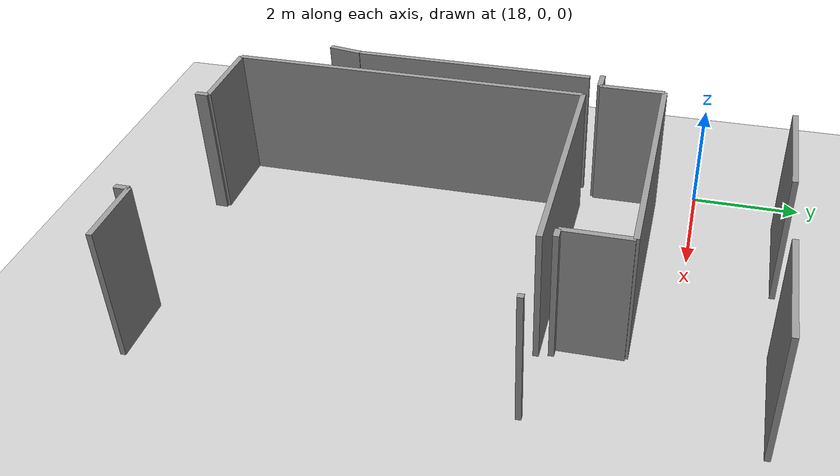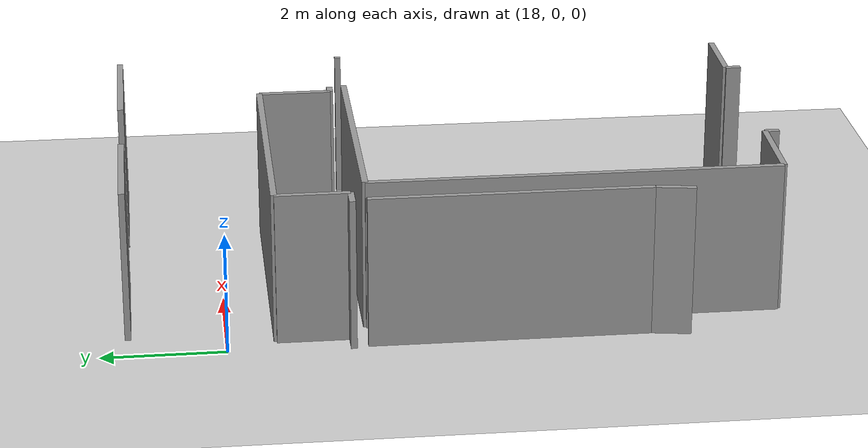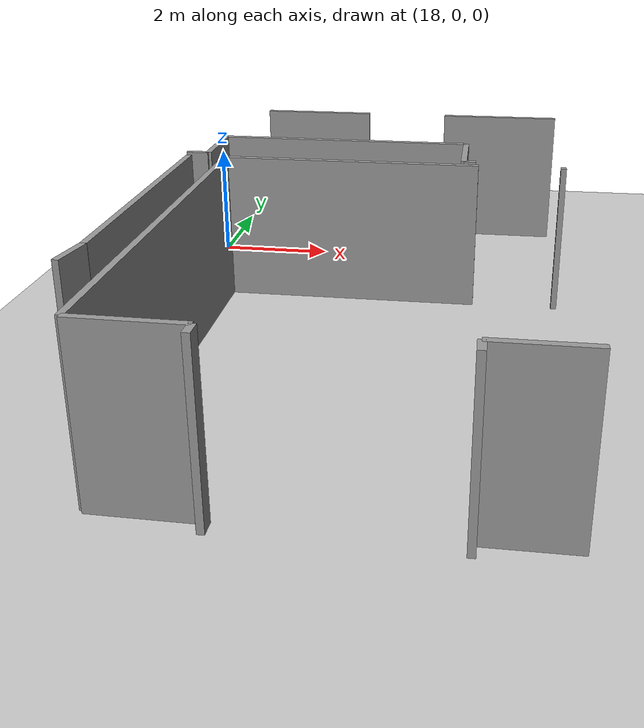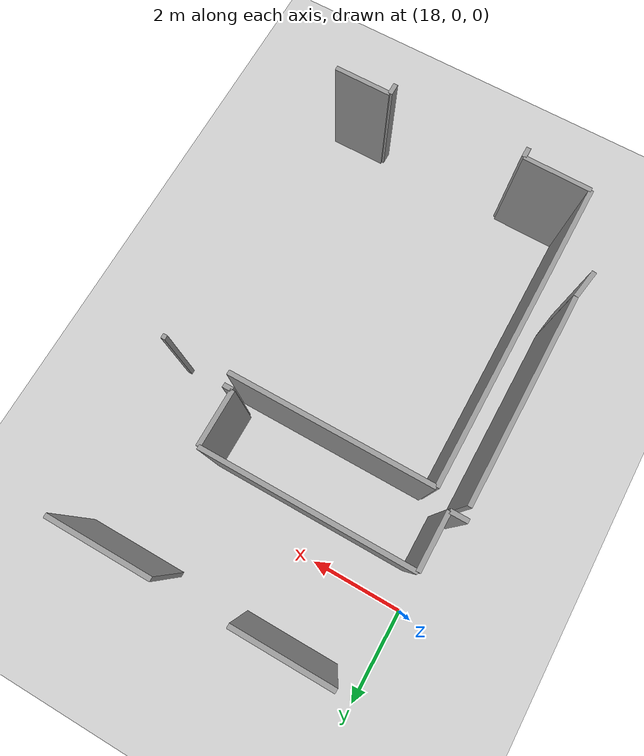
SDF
<sdf version="1.6">
 <world name="default">
  <model name="ground_plane">
   <static>1</static>
   <link name="link">
    <collision name="collision">
     <geometry><plane><normal>0 0 1</normal><size>100 100</size></plane></geometry>
     <surface><friction><ode><mu>100</mu><mu2>50</mu2></ode></friction></surface>
    </collision>
    <visual name="visual">
     <cast_shadows>0</cast_shadows>
     <geometry><plane><normal>0 0 1</normal><size>100 100</size></plane></geometry>
     <material>
      <script><uri>file://media/materials/scripts/gazebo.material</uri><name>Gazebo/Grey</name></script>
     </material>
    </visual>
   </link>
  </model>
  <model name="0510034841_A-40">
   <static>1</static>
   <link name="Wall_233">
    <collision name="Wall_233_Collision">
     <geometry><box><size>4.4979435361 0.1 2.5</size></box></geometry>
     <pose>2.24897176805 0 1.25 0 0 0</pose>
    </collision>
    <visual name="Wall_233_Visual">
     <pose>2.24897176805 0 1.25 0 0 0</pose>
     <geometry><box><size>4.4979435361 0.1 2.5</size></box></geometry>
     <material>
      <script><uri>file://media/materials/scripts/gazebo.material</uri><name>Gazebo/Grey</name></script>
      <ambient>1 1 1 1</ambient>
     </material>
    </visual>
    <pose>51.8256829491 -11.5381588301 0 0 0 -1.57079632679</pose>
   </link>
   <link name="Wall_234">
    <collision name="Wall_234_Collision">
     <geometry><box><size>0.634008408141 0.1 2.5</size></box></geometry>
     <pose>0.317004204071 0 1.25 0 0 0</pose>
    </collision>
    <visual name="Wall_234_Visual">
     <pose>0.317004204071 0 1.25 0 0 0</pose>
     <geometry><box><size>0.634008408141 0.1 2.5</size></box></geometry>
     <material>
      <script><uri>file://media/materials/scripts/gazebo.material</uri><name>Gazebo/Grey</name></script>
      <ambient>1 1 1 1</ambient>
     </material>
    </visual>
    <pose>51.8256829491 -16.0361023662 0 0 0 -1.73288378928</pose>
   </link>
   <link name="Wall_251">
    <collision name="Wall_251_Collision">
     <geometry><box><size>2.09924342439 0.1 2.5</size></box></geometry>
     <pose>1.0496217122 0 1.25 0 0 0</pose>
    </collision>
    <visual name="Wall_251_Visual">
     <pose>1.0496217122 0 1.25 0 0 0</pose>
     <geometry><box><size>2.09924342439 0.1 2.5</size></box></geometry>
     <material>
      <script><uri>file://media/materials/scripts/gazebo.material</uri><name>Gazebo/Grey</name></script>
      <ambient>1 1 1 1</ambient>
     </material>
    </visual>
    <pose>52.3988270539 -7.78688940794 0 0 0 0.0</pose>
   </link>
   <link name="Wall_252">
    <collision name="Wall_252_Collision">
     <geometry><box><size>2.20892149893 0.1 2.5</size></box></geometry>
     <pose>1.10446074947 0 1.25 0 0 0</pose>
    </collision>
    <visual name="Wall_252_Visual">
     <pose>1.10446074947 0 1.25 0 0 0</pose>
     <geometry><box><size>2.20892149893 0.1 2.5</size></box></geometry>
     <material>
      <script><uri>file://media/materials/scripts/gazebo.material</uri><name>Gazebo/Grey</name></script>
      <ambient>1 1 1 1</ambient>
     </material>
    </visual>
    <pose>56.0317863309 -7.78688940794 0 0 0 0.0</pose>
   </link>
   <link name="Wall_256">
    <collision name="Wall_256_Collision">
     <geometry><box><size>0.198410683457 0.1 2.5</size></box></geometry>
     <pose>0.0992053417284 0 1.25 0 0 0</pose>
    </collision>
    <visual name="Wall_256_Visual">
     <pose>0.0992053417284 0 1.25 0 0 0</pose>
     <geometry><box><size>0.198410683457 0.1 2.5</size></box></geometry>
     <material>
      <script><uri>file://media/materials/scripts/gazebo.material</uri><name>Gazebo/Grey</name></script>
      <ambient>1 1 1 1</ambient>
     </material>
    </visual>
    <pose>56.7440591043 -11.3146135879 0 0 0 3.14159265359</pose>
   </link>
   <link name="Wall_257">
    <collision name="Wall_257_Collision">
     <geometry><box><size>1.1965573271 0.1 2.5</size></box></geometry>
     <pose>0.598278663552 0 1.25 0 0 0</pose>
    </collision>
    <visual name="Wall_257_Visual">
     <pose>0.598278663552 0 1.25 0 0 0</pose>
     <geometry><box><size>1.1965573271 0.1 2.5</size></box></geometry>
     <material>
      <script><uri>file://media/materials/scripts/gazebo.material</uri><name>Gazebo/Grey</name></script>
      <ambient>1 1 1 1</ambient>
     </material>
    </visual>
    <pose>56.5456484208 -11.3146135879 0 0 0 1.57079632679</pose>
   </link>
   <link name="Wall_258">
    <collision name="Wall_258_Collision">
     <geometry><box><size>4.44323144105 0.1 2.5</size></box></geometry>
     <pose>2.22161572052 0 1.25 0 0 0</pose>
    </collision>
    <visual name="Wall_258_Visual">
     <pose>2.22161572052 0 1.25 0 0 0</pose>
     <geometry><box><size>4.44323144105 0.1 2.5</size></box></geometry>
     <material>
      <script><uri>file://media/materials/scripts/gazebo.material</uri><name>Gazebo/Grey</name></script>
      <ambient>1 1 1 1</ambient>
     </material>
    </visual>
    <pose>56.5456484208 -10.1180562608 0 0 0 3.14159265359</pose>
   </link>
   <link name="Wall_259">
    <collision name="Wall_259_Collision">
     <geometry><box><size>1.19046410074 0.1 2.5</size></box></geometry>
     <pose>0.595232050371 0 1.25 0 0 0</pose>
    </collision>
    <visual name="Wall_259_Visual">
     <pose>0.595232050371 0 1.25 0 0 0</pose>
     <geometry><box><size>1.19046410074 0.1 2.5</size></box></geometry>
     <material>
      <script><uri>file://media/materials/scripts/gazebo.material</uri><name>Gazebo/Grey</name></script>
      <ambient>1 1 1 1</ambient>
     </material>
    </visual>
    <pose>52.1024169798 -10.1180562608 0 0 0 -1.57079632679</pose>
   </link>
   <link name="Wall_260">
    <collision name="Wall_260_Collision">
     <geometry><box><size>0.378160861176 0.1 2.5</size></box></geometry>
     <pose>0.189080430588 0 1.25 0 0 0</pose>
    </collision>
    <visual name="Wall_260_Visual">
     <pose>0.189080430588 0 1.25 0 0 0</pose>
     <geometry><box><size>0.378160861176 0.1 2.5</size></box></geometry>
     <material>
      <script><uri>file://media/materials/scripts/gazebo.material</uri><name>Gazebo/Grey</name></script>
      <ambient>1 1 1 1</ambient>
     </material>
    </visual>
    <pose>52.1024169798 -11.3085203615 0 0 0 3.14159265359</pose>
   </link>
   <link name="Wall_305">
    <collision name="Wall_305_Collision">
     <geometry><box><size>6.65684980197 0.1 2.5</size></box></geometry>
     <pose>3.32842490099 0 1.25 0 0 0</pose>
    </collision>
    <visual name="Wall_305_Visual">
     <pose>3.32842490099 0 1.25 0 0 0</pose>
     <geometry><box><size>6.65684980197 0.1 2.5</size></box></geometry>
     <material>
      <script><uri>file://media/materials/scripts/gazebo.material</uri><name>Gazebo/Grey</name></script>
      <ambient>1 1 1 1</ambient>
     </material>
    </visual>
    <pose>52.4822280898 -18.2186198842 0 0 0 1.57079632679</pose>
   </link>
   <link name="Wall_306">
    <collision name="Wall_306_Collision">
     <geometry><box><size>4.31578145628 0.1 2.5</size></box></geometry>
     <pose>2.15789072814 0 1.25 0 0 0</pose>
    </collision>
    <visual name="Wall_306_Visual">
     <pose>2.15789072814 0 1.25 0 0 0</pose>
     <geometry><box><size>4.31578145628 0.1 2.5</size></box></geometry>
     <material>
      <script><uri>file://media/materials/scripts/gazebo.material</uri><name>Gazebo/Grey</name></script>
      <ambient>1 1 1 1</ambient>
     </material>
    </visual>
    <pose>52.4822280898 -11.5617700823 0 0 0 0.0</pose>
   </link>
   <link name="Wall_307">
    <collision name="Wall_307_Collision">
     <geometry><box><size>0.0927947598253 0.1 2.5</size></box></geometry>
     <pose>0.0463973799127 0 1.25 0 0 0</pose>
    </collision>
    <visual name="Wall_307_Visual">
     <pose>0.0463973799127 0 1.25 0 0 0</pose>
     <geometry><box><size>0.0927947598253 0.1 2.5</size></box></geometry>
     <material>
      <script><uri>file://media/materials/scripts/gazebo.material</uri><name>Gazebo/Grey</name></script>
      <ambient>1 1 1 1</ambient>
     </material>
    </visual>
    <pose>58.1428353813 -11.5617700823 0 0 0 0.0</pose>
   </link>
   <link name="Wall_309">
    <collision name="Wall_309_Collision">
     <geometry><box><size>1.2587590129 0.1 2.5</size></box></geometry>
     <pose>0.629379506449 0 1.25 0 0 0</pose>
    </collision>
    <visual name="Wall_309_Visual">
     <pose>0.629379506449 0 1.25 0 0 0</pose>
     <geometry><box><size>1.2587590129 0.1 2.5</size></box></geometry>
     <material>
      <script><uri>file://media/materials/scripts/gazebo.material</uri><name>Gazebo/Grey</name></script>
      <ambient>1 1 1 1</ambient>
     </material>
    </visual>
    <pose>58.2356301412 -18.2148116178 0 0 0 3.14159265359</pose>
   </link>
   <link name="Wall_310">
    <collision name="Wall_310_Collision">
     <geometry><box><size>0.254138316238 0.1 2.5</size></box></geometry>
     <pose>0.127069158119 0 1.25 0 0 0</pose>
    </collision>
    <visual name="Wall_310_Visual">
     <pose>0.127069158119 0 1.25 0 0 0</pose>
     <geometry><box><size>0.254138316238 0.1 2.5</size></box></geometry>
     <material>
      <script><uri>file://media/materials/scripts/gazebo.material</uri><name>Gazebo/Grey</name></script>
      <ambient>1 1 1 1</ambient>
     </material>
    </visual>
    <pose>56.9768711283 -18.2148116178 0 0 0 -1.57079632679</pose>
   </link>
   <link name="Wall_311">
    <collision name="Wall_311_Collision">
     <geometry><box><size>0.234970041637 0.1 2.5</size></box></geometry>
     <pose>0.117485020819 0 1.25 0 0 0</pose>
    </collision>
    <visual name="Wall_311_Visual">
     <pose>0.117485020819 0 1.25 0 0 0</pose>
     <geometry><box><size>0.234970041637 0.1 2.5</size></box></geometry>
     <material>
      <script><uri>file://media/materials/scripts/gazebo.material</uri><name>Gazebo/Grey</name></script>
      <ambient>1 1 1 1</ambient>
     </material>
    </visual>
    <pose>53.9599624251 -18.468949934 0 0 0 1.57079632679</pose>
   </link>
   <link name="Wall_312">
    <collision name="Wall_312_Collision">
     <geometry><box><size>1.47781416141 0.1 2.5</size></box></geometry>
     <pose>0.738907080705 0 1.25 0 0 0</pose>
    </collision>
    <visual name="Wall_312_Visual">
     <pose>0.738907080705 0 1.25 0 0 0</pose>
     <geometry><box><size>1.47781416141 0.1 2.5</size></box></geometry>
     <material>
      <script><uri>file://media/materials/scripts/gazebo.material</uri><name>Gazebo/Grey</name></script>
      <ambient>1 1 1 1</ambient>
     </material>
    </visual>
    <pose>53.9599624251 -18.2339798924 0 0 0 3.13119873188</pose>
   </link>
   <pose>-33.8 9.33765613893 0 0 0 0</pose>
  </model>
 </world>
</sdf>
